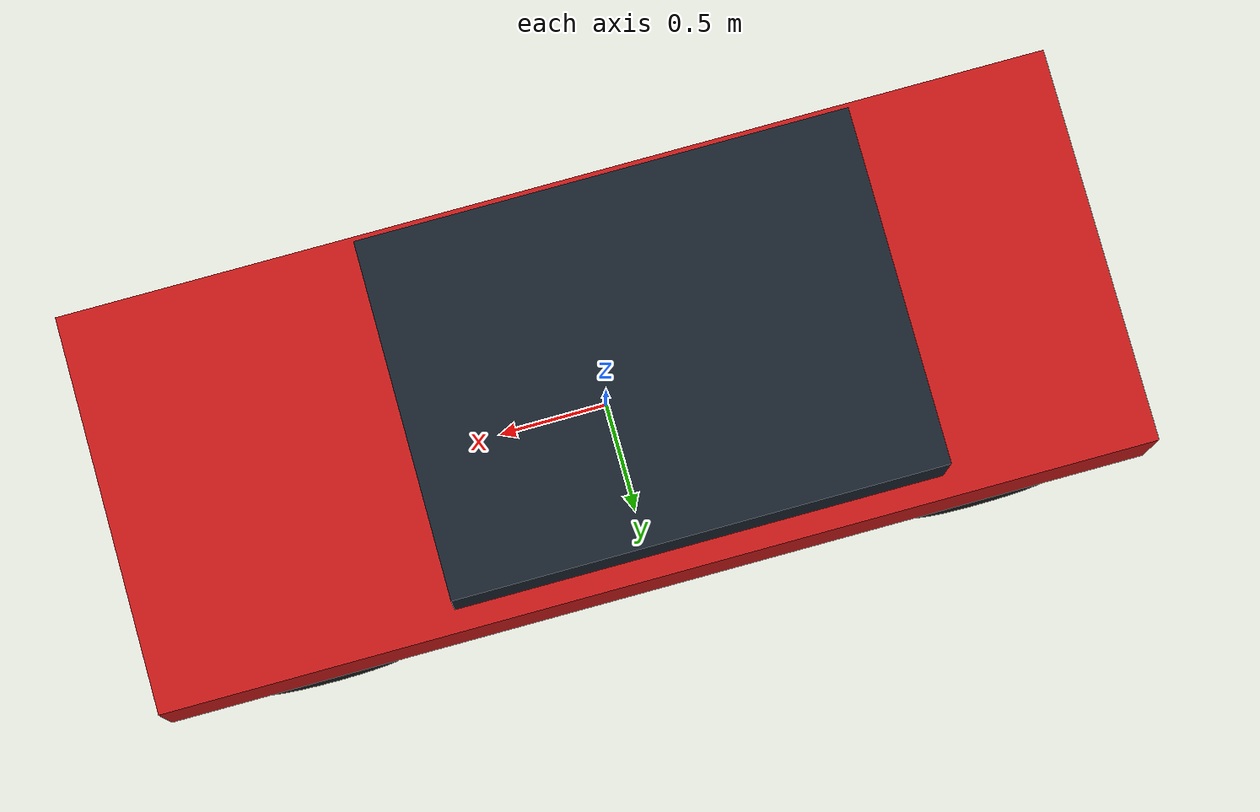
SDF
<?xml version="1.0" ?>
<sdf version="1.9">
  <model name="car">
    <static>true</static>
    <link name="link">

      <!-- Нижний кузов -->
      <visual name="body_visual">
        <pose>0 0 0.6 0 0 0</pose>
        <geometry><box><size>4.5 1.8 0.55</size></box></geometry>
        <material>
          <ambient>0.5 0.05 0.05 1</ambient>
          <diffuse>0.8 0.1 0.1 1</diffuse>
        </material>
      </visual>

      <!-- Кабина (тёмное «стекло») -->
      <visual name="cabin_visual">
        <pose>-0.2 0 1.05 0 0 0</pose>
        <geometry><box><size>2.2 1.6 0.5</size></box></geometry>
        <material>
          <ambient>0.06 0.08 0.10 1</ambient>
          <diffuse>0.10 0.14 0.18 1</diffuse>
        </material>
      </visual>

      <!-- 4 колеса (цилиндр, ось по Y -> roll 90°) -->
      <visual name="wheel_fl_visual">
        <pose>1.5 0.78 0.32 1.5708 0 0</pose>
        <geometry><cylinder><radius>0.32</radius><length>0.22</length></cylinder></geometry>
        <material>
          <ambient>0.05 0.05 0.05 1</ambient>
          <diffuse>0.1 0.1 0.1 1</diffuse>
        </material>
      </visual>
      <visual name="wheel_fr_visual">
        <pose>1.5 -0.78 0.32 1.5708 0 0</pose>
        <geometry><cylinder><radius>0.32</radius><length>0.22</length></cylinder></geometry>
        <material>
          <ambient>0.05 0.05 0.05 1</ambient>
          <diffuse>0.1 0.1 0.1 1</diffuse>
        </material>
      </visual>
      <visual name="wheel_rl_visual">
        <pose>-1.5 0.78 0.32 1.5708 0 0</pose>
        <geometry><cylinder><radius>0.32</radius><length>0.22</length></cylinder></geometry>
        <material>
          <ambient>0.05 0.05 0.05 1</ambient>
          <diffuse>0.1 0.1 0.1 1</diffuse>
        </material>
      </visual>
      <visual name="wheel_rr_visual">
        <pose>-1.5 -0.78 0.32 1.5708 0 0</pose>
        <geometry><cylinder><radius>0.32</radius><length>0.22</length></cylinder></geometry>
        <material>
          <ambient>0.05 0.05 0.05 1</ambient>
          <diffuse>0.1 0.1 0.1 1</diffuse>
        </material>
      </visual>

      <!-- Общий collision (один бокс под габарит машины) -->
      <collision name="collision">
        <pose>0 0 0.7 0 0 0</pose>
        <geometry><box><size>4.5 1.8 1.4</size></box></geometry>
      </collision>

    </link>
  </model>
</sdf>
